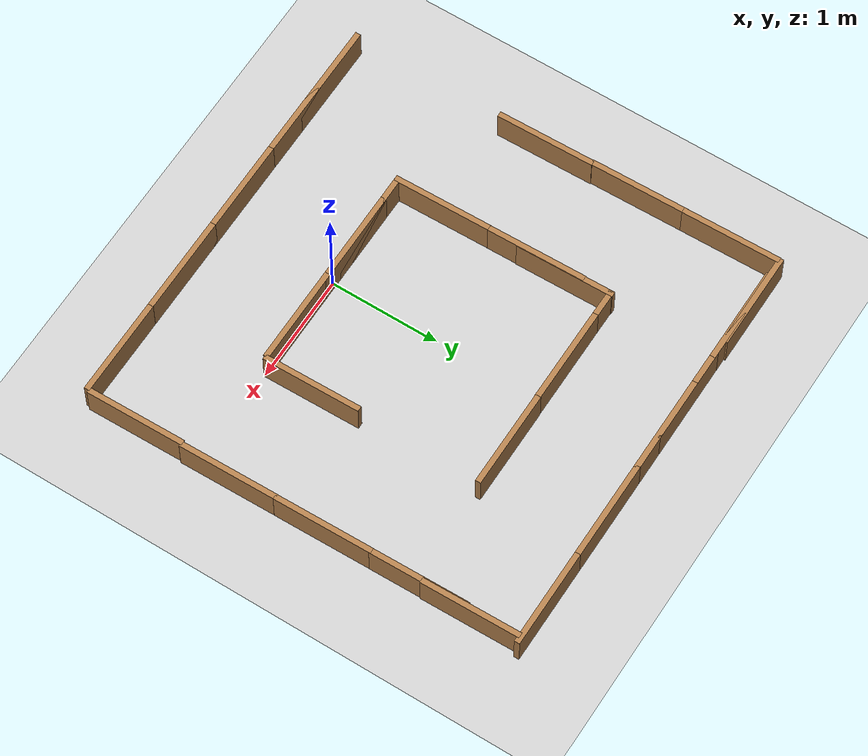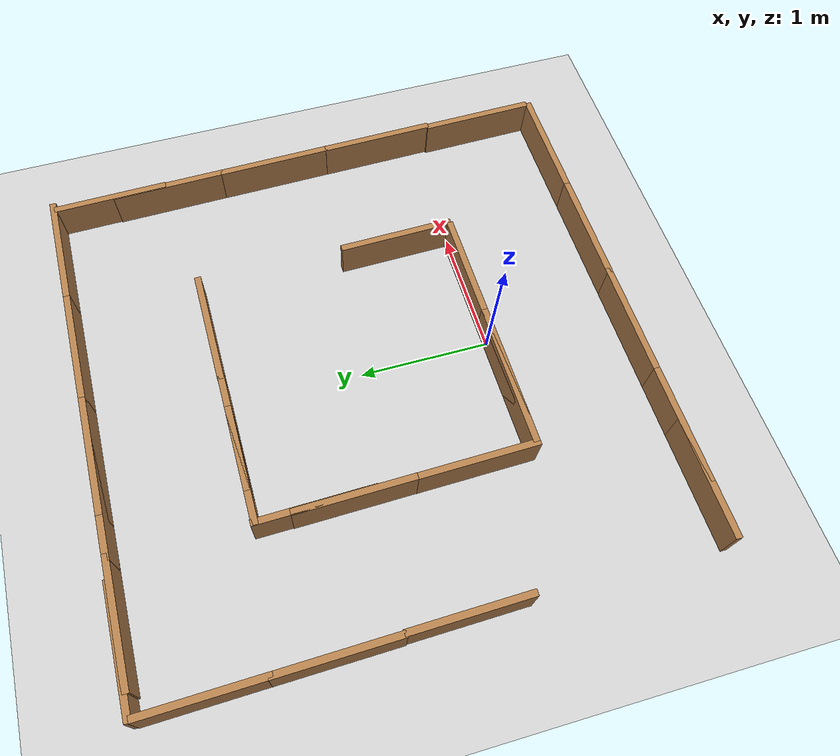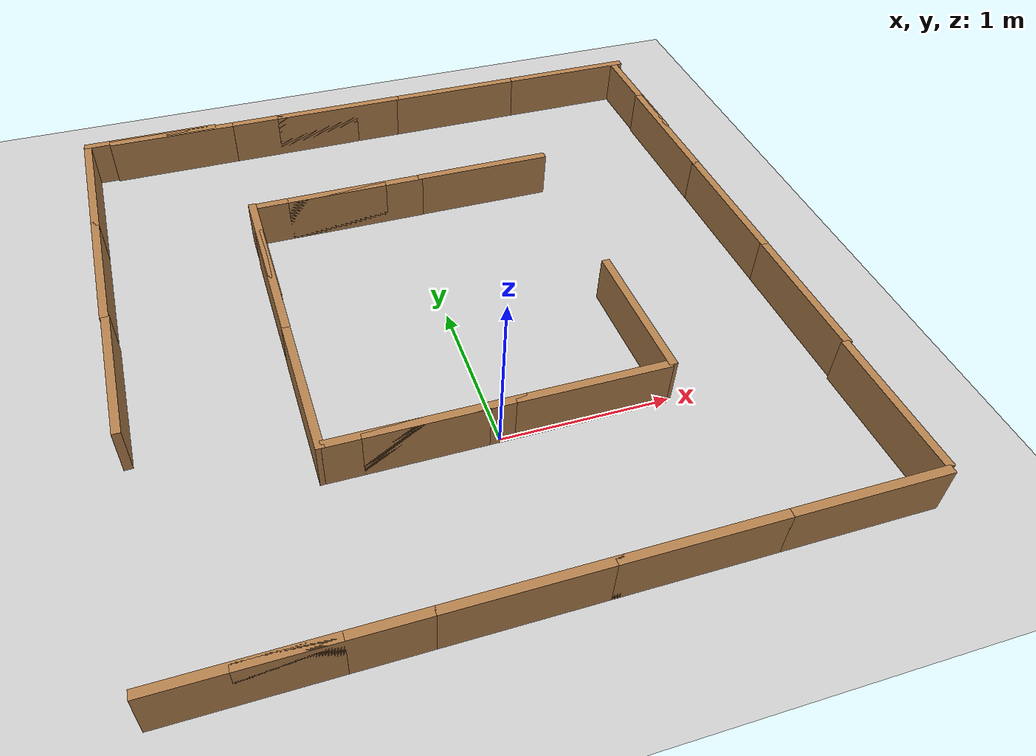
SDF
<sdf version="1.7">
 <world name="default">
  <light name="sun" type="directional">
   <pose>0 0 10 0 -0 0</pose>
   <diffuse>0.8 0.8 0.8 1</diffuse>
   <specular>0.2 0.2 0.2 1</specular>
   <attenuation>
    <range>1000</range>
    <constant>0.9</constant>
    <linear>0.01</linear>
    <quadratic>0.001</quadratic>
   </attenuation>
   <direction>-0.5 0.1 -0.9</direction>
   <spot><inner_angle>0</inner_angle><outer_angle>0</outer_angle><falloff>0</falloff></spot>
  </light>
  <model name="ground_plane">
   <static>1</static>
   <link name="link">
    <collision name="collision">
     <geometry><plane><normal>0 0 1</normal><size>100 100</size></plane></geometry>
     <surface>
      <contact><collide_bitmask>65535</collide_bitmask></contact>
      <friction><ode><mu>100</mu><mu2>50</mu2></ode></friction>
     </surface>
    </collision>
    <visual name="visual">
     <cast_shadows>0</cast_shadows>
     <geometry><plane><normal>0 0 1</normal><size>100 100</size></plane></geometry>
     <material>
      <script><uri>file://media/materials/scripts/gazebo.material</uri><name>Gazebo/Grey</name></script>
     </material>
    </visual>
   </link>
  </model>
  <gravity>0 0 -9.8</gravity>
  <magnetic_field>6e-06 2.3e-05 -4.2e-05</magnetic_field>
  <atmosphere type="adiabatic"/>
  <physics type="ode">
   <max_step_size>0.001</max_step_size>
   <real_time_factor>1</real_time_factor>
   <real_time_update_rate>1000</real_time_update_rate>
  </physics>
  <scene><ambient>0.4 0.4 0.4 1</ambient><background>0.7 0.7 0.7 1</background><shadows>1</shadows></scene>
  <audio><device>default</device></audio>
  <spherical_coordinates>
   <surface_model>EARTH_WGS84</surface_model>
   <latitude_deg>0</latitude_deg>
   <longitude_deg>0</longitude_deg>
   <elevation>0</elevation>
   <heading_deg>0</heading_deg>
  </spherical_coordinates>
  <model name="wall90cm">
   <pose>1.55943 3.01425 0 0 -0 0</pose>
   <link name="Wall_6">
    <collision name="Wall_6_Collision">
     <geometry><box><size>0.9 0.05 0.3</size></box></geometry>
     <pose>0 0 0.15 0 -0 0</pose>
    </collision>
    <visual name="Wall_6_Visual">
     <pose>0 0 0.15 0 -0 0</pose>
     <geometry><box><size>0.9 0.05 0.3</size></box></geometry>
     <material>
      <script><uri>file://media/materials/scripts/gazebo.material</uri><name>Gazebo/Wood</name></script>
      <ambient>1 1 1 1</ambient>
     </material>
     <meta><layer>0</layer></meta>
    </visual>
   </link>
   <static>1</static>
  </model>
  <model name="wall90cm_clone">
   <pose>0.66366 3.01425 0 0 -0 0</pose>
   <link name="Wall_6">
    <collision name="Wall_6_Collision">
     <geometry><box><size>0.9 0.05 0.3</size></box></geometry>
     <pose>0 0 0.15 0 -0 0</pose>
    </collision>
    <visual name="Wall_6_Visual">
     <pose>0 0 0.15 0 -0 0</pose>
     <geometry><box><size>0.9 0.05 0.3</size></box></geometry>
     <material>
      <script><uri>file://media/materials/scripts/gazebo.material</uri><name>Gazebo/Wood</name></script>
      <ambient>1 1 1 1</ambient>
     </material>
     <meta><layer>0</layer></meta>
    </visual>
   </link>
   <static>1</static>
  </model>
  <model name="wall90cm_clone_0">
   <pose>-0.219039 3.01425 0 0 -0 0</pose>
   <link name="Wall_6">
    <collision name="Wall_6_Collision">
     <geometry><box><size>0.9 0.05 0.3</size></box></geometry>
     <pose>0 0 0.15 0 -0 0</pose>
    </collision>
    <visual name="Wall_6_Visual">
     <pose>0 0 0.15 0 -0 0</pose>
     <geometry><box><size>0.9 0.05 0.3</size></box></geometry>
     <material>
      <script><uri>file://media/materials/scripts/gazebo.material</uri><name>Gazebo/Wood</name></script>
      <ambient>1 1 1 1</ambient>
     </material>
     <meta><layer>0</layer></meta>
    </visual>
   </link>
   <static>1</static>
  </model>
  <model name="wall90cm_clone_1">
   <pose>-0.539426 3.01425 0 0 -0 0</pose>
   <link name="Wall_6">
    <collision name="Wall_6_Collision">
     <geometry><box><size>0.9 0.05 0.3</size></box></geometry>
     <pose>0 0 0.15 0 -0 0</pose>
    </collision>
    <visual name="Wall_6_Visual">
     <pose>0 0 0.15 0 -0 0</pose>
     <geometry><box><size>0.9 0.05 0.3</size></box></geometry>
     <material>
      <script><uri>file://media/materials/scripts/gazebo.material</uri><name>Gazebo/Wood</name></script>
      <ambient>1 1 1 1</ambient>
     </material>
     <meta><layer>0</layer></meta>
    </visual>
   </link>
   <static>1</static>
  </model>
  <model name="wall90cm_clone_2">
   <pose>-1.38943 3.01425 0 0 -0 0</pose>
   <link name="Wall_6">
    <collision name="Wall_6_Collision">
     <geometry><box><size>0.9 0.05 0.3</size></box></geometry>
     <pose>0 0 0.15 0 -0 0</pose>
    </collision>
    <visual name="Wall_6_Visual">
     <pose>0 0 0.15 0 -0 0</pose>
     <geometry><box><size>0.9 0.05 0.3</size></box></geometry>
     <material>
      <script><uri>file://media/materials/scripts/gazebo.material</uri><name>Gazebo/Wood</name></script>
      <ambient>1 1 1 1</ambient>
     </material>
     <meta><layer>0</layer></meta>
    </visual>
   </link>
   <static>1</static>
  </model>
  <model name="wall90cm_clone_3">
   <pose>-1.55943 3.02733 0 0 -0 0</pose>
   <link name="Wall_6">
    <collision name="Wall_6_Collision">
     <geometry><box><size>0.9 0.05 0.3</size></box></geometry>
     <pose>0 0 0.15 0 -0 0</pose>
    </collision>
    <visual name="Wall_6_Visual">
     <pose>0 0 0.15 0 -0 0</pose>
     <geometry><box><size>0.9 0.05 0.3</size></box></geometry>
     <material>
      <script><uri>file://media/materials/scripts/gazebo.material</uri><name>Gazebo/Wood</name></script>
      <ambient>1 1 1 1</ambient>
     </material>
     <meta><layer>0</layer></meta>
    </visual>
   </link>
   <static>1</static>
  </model>
  <model name="wall90cm_clone_4">
   <pose>1.5381 -1.03249 0 0 -0 0</pose>
   <link name="Wall_6">
    <collision name="Wall_6_Collision">
     <geometry><box><size>0.9 0.05 0.3</size></box></geometry>
     <pose>0 0 0.15 0 -0 0</pose>
    </collision>
    <visual name="Wall_6_Visual">
     <pose>0 0 0.15 0 -0 0</pose>
     <geometry><box><size>0.9 0.05 0.3</size></box></geometry>
     <material>
      <script><uri>file://media/materials/scripts/gazebo.material</uri><name>Gazebo/Wood</name></script>
      <ambient>1 1 1 1</ambient>
     </material>
     <meta><layer>0</layer></meta>
    </visual>
   </link>
   <static>1</static>
  </model>
  <model name="wall90cm_clone_5">
   <pose>0.642323 -1.03249 0 0 -0 0</pose>
   <link name="Wall_6">
    <collision name="Wall_6_Collision">
     <geometry><box><size>0.9 0.05 0.3</size></box></geometry>
     <pose>0 0 0.15 0 -0 0</pose>
    </collision>
    <visual name="Wall_6_Visual">
     <pose>0 0 0.15 0 -0 0</pose>
     <geometry><box><size>0.9 0.05 0.3</size></box></geometry>
     <material>
      <script><uri>file://media/materials/scripts/gazebo.material</uri><name>Gazebo/Wood</name></script>
      <ambient>1 1 1 1</ambient>
     </material>
     <meta><layer>0</layer></meta>
    </visual>
   </link>
   <static>1</static>
  </model>
  <model name="wall90cm_clone_6">
   <pose>-0.214221 -1.03249 0 0 -0 0</pose>
   <link name="Wall_6">
    <collision name="Wall_6_Collision">
     <geometry><box><size>0.9 0.05 0.3</size></box></geometry>
     <pose>0 0 0.15 0 -0 0</pose>
    </collision>
    <visual name="Wall_6_Visual">
     <pose>0 0 0.15 0 -0 0</pose>
     <geometry><box><size>0.9 0.05 0.3</size></box></geometry>
     <material>
      <script><uri>file://media/materials/scripts/gazebo.material</uri><name>Gazebo/Wood</name></script>
      <ambient>1 1 1 1</ambient>
     </material>
     <meta><layer>0</layer></meta>
    </visual>
   </link>
   <static>1</static>
  </model>
  <model name="wall90cm_clone_7">
   <pose>-1.11 -1.03249 0 0 -0 0</pose>
   <link name="Wall_6">
    <collision name="Wall_6_Collision">
     <geometry><box><size>0.9 0.05 0.3</size></box></geometry>
     <pose>0 0 0.15 0 -0 0</pose>
    </collision>
    <visual name="Wall_6_Visual">
     <pose>0 0 0.15 0 -0 0</pose>
     <geometry><box><size>0.9 0.05 0.3</size></box></geometry>
     <material>
      <script><uri>file://media/materials/scripts/gazebo.material</uri><name>Gazebo/Wood</name></script>
      <ambient>1 1 1 1</ambient>
     </material>
     <meta><layer>0</layer></meta>
    </visual>
   </link>
   <static>1</static>
  </model>
  <model name="wall90cm_clone_8">
   <pose>-1.52192 -1.03249 0 0 -0 0</pose>
   <link name="Wall_6">
    <collision name="Wall_6_Collision">
     <geometry><box><size>0.9 0.05 0.3</size></box></geometry>
     <pose>0 0 0.15 0 -0 0</pose>
    </collision>
    <visual name="Wall_6_Visual">
     <pose>0 0 0.15 0 -0 0</pose>
     <geometry><box><size>0.9 0.05 0.3</size></box></geometry>
     <material>
      <script><uri>file://media/materials/scripts/gazebo.material</uri><name>Gazebo/Wood</name></script>
      <ambient>1 1 1 1</ambient>
     </material>
     <meta><layer>0</layer></meta>
    </visual>
   </link>
   <static>1</static>
  </model>
  <model name="wall90cm_clone_9">
   <pose>0.557324 2.0277 0 0 -0 0</pose>
   <link name="Wall_6">
    <collision name="Wall_6_Collision">
     <geometry><box><size>0.9 0.05 0.3</size></box></geometry>
     <pose>0 0 0.15 0 -0 0</pose>
    </collision>
    <visual name="Wall_6_Visual">
     <pose>0 0 0.15 0 -0 0</pose>
     <geometry><box><size>0.9 0.05 0.3</size></box></geometry>
     <material>
      <script><uri>file://media/materials/scripts/gazebo.material</uri><name>Gazebo/Wood</name></script>
      <ambient>1 1 1 1</ambient>
     </material>
     <meta><layer>0</layer></meta>
    </visual>
   </link>
   <static>1</static>
  </model>
  <model name="wall90cm_clone_9_clone">
   <pose>-0.317894 2.02535 0 0 -0 0</pose>
   <link name="Wall_6">
    <collision name="Wall_6_Collision">
     <geometry><box><size>0.9 0.05 0.3</size></box></geometry>
     <pose>0 0 0.15 0 -0 0</pose>
    </collision>
    <visual name="Wall_6_Visual">
     <pose>0 0 0.15 0 -0 0</pose>
     <geometry><box><size>0.9 0.05 0.3</size></box></geometry>
     <material>
      <script><uri>file://media/materials/scripts/gazebo.material</uri><name>Gazebo/Wood</name></script>
      <ambient>1 1 1 1</ambient>
     </material>
     <meta><layer>0</layer></meta>
    </visual>
   </link>
   <static>1</static>
  </model>
  <model name="wall90cm_clone_9_clone_0">
   <pose>-0.566965 2.02535 0 0 -0 0</pose>
   <link name="Wall_6">
    <collision name="Wall_6_Collision">
     <geometry><box><size>0.9 0.05 0.3</size></box></geometry>
     <pose>0 0 0.15 0 -0 0</pose>
    </collision>
    <visual name="Wall_6_Visual">
     <pose>0 0 0.15 0 -0 0</pose>
     <geometry><box><size>0.9 0.05 0.3</size></box></geometry>
     <material>
      <script><uri>file://media/materials/scripts/gazebo.material</uri><name>Gazebo/Wood</name></script>
      <ambient>1 1 1 1</ambient>
     </material>
     <meta><layer>0</layer></meta>
    </visual>
   </link>
   <static>1</static>
  </model>
  <model name="wall90cm_clone_9_clone_1">
   <pose>0.527639 0.006554 0 0 -0 0</pose>
   <link name="Wall_6">
    <collision name="Wall_6_Collision">
     <geometry><box><size>0.9 0.05 0.3</size></box></geometry>
     <pose>0 0 0.15 0 -0 0</pose>
    </collision>
    <visual name="Wall_6_Visual">
     <pose>0 0 0.15 0 -0 0</pose>
     <geometry><box><size>0.9 0.05 0.3</size></box></geometry>
     <material>
      <script><uri>file://media/materials/scripts/gazebo.material</uri><name>Gazebo/Wood</name></script>
      <ambient>1 1 1 1</ambient>
     </material>
     <meta><layer>0</layer></meta>
    </visual>
   </link>
   <static>1</static>
  </model>
  <model name="wall90cm_clone_9_clone_2">
   <pose>-0.304785 0.006555 0 0 -0 0</pose>
   <link name="Wall_6">
    <collision name="Wall_6_Collision">
     <geometry><box><size>0.9 0.05 0.3</size></box></geometry>
     <pose>0 0 0.15 0 -0 0</pose>
    </collision>
    <visual name="Wall_6_Visual">
     <pose>0 0 0.15 0 -0 0</pose>
     <geometry><box><size>0.9 0.05 0.3</size></box></geometry>
     <material>
      <script><uri>file://media/materials/scripts/gazebo.material</uri><name>Gazebo/Wood</name></script>
      <ambient>1 1 1 1</ambient>
     </material>
     <meta><layer>0</layer></meta>
    </visual>
   </link>
   <static>1</static>
  </model>
  <model name="wall90cm_clone_9_clone_3">
   <pose>-0.51453 0.006555 0 0 -0 0</pose>
   <link name="Wall_6">
    <collision name="Wall_6_Collision">
     <geometry><box><size>0.9 0.05 0.3</size></box></geometry>
     <pose>0 0 0.15 0 -0 0</pose>
    </collision>
    <visual name="Wall_6_Visual">
     <pose>0 0 0.15 0 -0 0</pose>
     <geometry><box><size>0.9 0.05 0.3</size></box></geometry>
     <material>
      <script><uri>file://media/materials/scripts/gazebo.material</uri><name>Gazebo/Wood</name></script>
      <ambient>1 1 1 1</ambient>
     </material>
     <meta><layer>0</layer></meta>
    </visual>
   </link>
   <static>1</static>
  </model>
  <model name="wall90cm_clone_9_clone_4_clone">
   <pose>-0.976207 0.432089 0 0 -0 1.5866</pose>
   <link name="Wall_6">
    <collision name="Wall_6_Collision">
     <geometry><box><size>0.9 0.05 0.3</size></box></geometry>
     <pose>0 0 0.15 0 -0 0</pose>
    </collision>
    <visual name="Wall_6_Visual">
     <pose>0 0 0.15 0 -0 0</pose>
     <geometry><box><size>0.9 0.05 0.3</size></box></geometry>
     <material>
      <script><uri>file://media/materials/scripts/gazebo.material</uri><name>Gazebo/Wood</name></script>
      <ambient>1 1 1 1</ambient>
     </material>
     <meta><layer>0</layer></meta>
    </visual>
   </link>
   <static>1</static>
  </model>
  <model name="wall90cm_clone_9_clone_4_clone_0">
   <pose>-0.989316 1.33006 0 0 -0 1.5866</pose>
   <link name="Wall_6">
    <collision name="Wall_6_Collision">
     <geometry><box><size>0.9 0.05 0.3</size></box></geometry>
     <pose>0 0 0.15 0 -0 0</pose>
    </collision>
    <visual name="Wall_6_Visual">
     <pose>0 0 0.15 0 -0 0</pose>
     <geometry><box><size>0.9 0.05 0.3</size></box></geometry>
     <material>
      <script><uri>file://media/materials/scripts/gazebo.material</uri><name>Gazebo/Wood</name></script>
      <ambient>1 1 1 1</ambient>
     </material>
     <meta><layer>0</layer></meta>
    </visual>
   </link>
   <static>1</static>
  </model>
  <model name="wall90cm_clone_9_clone_4_clone_1">
   <pose>-0.989316 1.60535 0 0 -0 1.5866</pose>
   <link name="Wall_6">
    <collision name="Wall_6_Collision">
     <geometry><box><size>0.9 0.05 0.3</size></box></geometry>
     <pose>0 0 0.15 0 -0 0</pose>
    </collision>
    <visual name="Wall_6_Visual">
     <pose>0 0 0.15 0 -0 0</pose>
     <geometry><box><size>0.9 0.05 0.3</size></box></geometry>
     <material>
      <script><uri>file://media/materials/scripts/gazebo.material</uri><name>Gazebo/Wood</name></script>
      <ambient>1 1 1 1</ambient>
     </material>
     <meta><layer>0</layer></meta>
    </visual>
   </link>
   <static>1</static>
  </model>
  <model name="wall90cm_clone_9_clone_4_clone_clone">
   <pose>0.977042 0.445198 0 0 -0 1.5866</pose>
   <link name="Wall_6">
    <collision name="Wall_6_Collision">
     <geometry><box><size>0.9 0.05 0.3</size></box></geometry>
     <pose>0 0 0.15 0 -0 0</pose>
    </collision>
    <visual name="Wall_6_Visual">
     <pose>0 0 0.15 0 -0 0</pose>
     <geometry><box><size>0.9 0.05 0.3</size></box></geometry>
     <material>
      <script><uri>file://media/materials/scripts/gazebo.material</uri><name>Gazebo/Wood</name></script>
      <ambient>1 1 1 1</ambient>
     </material>
     <meta><layer>0</layer></meta>
    </visual>
   </link>
   <static>1</static>
  </model>
  <model name="wall90cm_clone_9_clone_4_clone_clone_0">
   <pose>1.97797 -0.568196 0 0 -0 1.5866</pose>
   <link name="Wall_6">
    <collision name="Wall_6_Collision">
     <geometry><box><size>0.9 0.05 0.3</size></box></geometry>
     <pose>0 0 0.15 0 -0 0</pose>
    </collision>
    <visual name="Wall_6_Visual">
     <pose>0 0 0.15 0 -0 0</pose>
     <geometry><box><size>0.9 0.05 0.3</size></box></geometry>
     <material>
      <script><uri>file://media/materials/scripts/gazebo.material</uri><name>Gazebo/Wood</name></script>
      <ambient>1 1 1 1</ambient>
     </material>
     <meta><layer>0</layer></meta>
    </visual>
   </link>
   <static>1</static>
  </model>
  <model name="wall90cm_clone_9_clone_4_clone_clone_1">
   <pose>1.97797 0.316667 0 0 -0 1.5866</pose>
   <link name="Wall_6">
    <collision name="Wall_6_Collision">
     <geometry><box><size>0.9 0.05 0.3</size></box></geometry>
     <pose>0 0 0.15 0 -0 0</pose>
    </collision>
    <visual name="Wall_6_Visual">
     <pose>0 0 0.15 0 -0 0</pose>
     <geometry><box><size>0.9 0.05 0.3</size></box></geometry>
     <material>
      <script><uri>file://media/materials/scripts/gazebo.material</uri><name>Gazebo/Wood</name></script>
      <ambient>1 1 1 1</ambient>
     </material>
     <meta><layer>0</layer></meta>
    </visual>
   </link>
   <static>1</static>
  </model>
  <model name="wall90cm_clone_9_clone_4_clone_clone_2">
   <pose>1.96486 1.20153 0 0 -0 1.5866</pose>
   <link name="Wall_6">
    <collision name="Wall_6_Collision">
     <geometry><box><size>0.9 0.05 0.3</size></box></geometry>
     <pose>0 0 0.15 0 -0 0</pose>
    </collision>
    <visual name="Wall_6_Visual">
     <pose>0 0 0.15 0 -0 0</pose>
     <geometry><box><size>0.9 0.05 0.3</size></box></geometry>
     <material>
      <script><uri>file://media/materials/scripts/gazebo.material</uri><name>Gazebo/Wood</name></script>
      <ambient>1 1 1 1</ambient>
     </material>
     <meta><layer>0</layer></meta>
    </visual>
   </link>
   <static>1</static>
  </model>
  <model name="wall90cm_clone_9_clone_4_clone_clone_3">
   <pose>1.95175 2.08639 0 0 -0 1.5866</pose>
   <link name="Wall_6">
    <collision name="Wall_6_Collision">
     <geometry><box><size>0.9 0.05 0.3</size></box></geometry>
     <pose>0 0 0.15 0 -0 0</pose>
    </collision>
    <visual name="Wall_6_Visual">
     <pose>0 0 0.15 0 -0 0</pose>
     <geometry><box><size>0.9 0.05 0.3</size></box></geometry>
     <material>
      <script><uri>file://media/materials/scripts/gazebo.material</uri><name>Gazebo/Wood</name></script>
      <ambient>1 1 1 1</ambient>
     </material>
     <meta><layer>0</layer></meta>
    </visual>
   </link>
   <static>1</static>
  </model>
  <model name="wall90cm_clone_9_clone_4_clone_clone_4">
   <pose>1.95175 2.55832 0 0 -0 1.5866</pose>
   <link name="Wall_6">
    <collision name="Wall_6_Collision">
     <geometry><box><size>0.9 0.05 0.3</size></box></geometry>
     <pose>0 0 0.15 0 -0 0</pose>
    </collision>
    <visual name="Wall_6_Visual">
     <pose>0 0 0.15 0 -0 0</pose>
     <geometry><box><size>0.9 0.05 0.3</size></box></geometry>
     <material>
      <script><uri>file://media/materials/scripts/gazebo.material</uri><name>Gazebo/Wood</name></script>
      <ambient>1 1 1 1</ambient>
     </material>
     <meta><layer>0</layer></meta>
    </visual>
   </link>
   <static>1</static>
  </model>
  <model name="wall90cm_clone_9_clone_4_clone_clone_5">
   <pose>-1.98127 2.57382 0 0 -0 1.5866</pose>
   <link name="Wall_6">
    <collision name="Wall_6_Collision">
     <geometry><box><size>0.9 0.05 0.3</size></box></geometry>
     <pose>0 0 0.15 0 -0 0</pose>
    </collision>
    <visual name="Wall_6_Visual">
     <pose>0 0 0.15 0 -0 0</pose>
     <geometry><box><size>0.9 0.05 0.3</size></box></geometry>
     <material>
      <script><uri>file://media/materials/scripts/gazebo.material</uri><name>Gazebo/Wood</name></script>
      <ambient>1 1 1 1</ambient>
     </material>
     <meta><layer>0</layer></meta>
    </visual>
   </link>
   <static>1</static>
  </model>
  <model name="wall90cm_clone_9_clone_4_clone_clone_6">
   <pose>-1.96816 1.70863 0 0 -0 1.5866</pose>
   <link name="Wall_6">
    <collision name="Wall_6_Collision">
     <geometry><box><size>0.9 0.05 0.3</size></box></geometry>
     <pose>0 0 0.15 0 -0 0</pose>
    </collision>
    <visual name="Wall_6_Visual">
     <pose>0 0 0.15 0 -0 0</pose>
     <geometry><box><size>0.9 0.05 0.3</size></box></geometry>
     <material>
      <script><uri>file://media/materials/scripts/gazebo.material</uri><name>Gazebo/Wood</name></script>
      <ambient>1 1 1 1</ambient>
     </material>
     <meta><layer>0</layer></meta>
    </visual>
   </link>
   <static>1</static>
  </model>
  <model name="wall90cm_clone_9_clone_4_clone_clone_7">
   <pose>-1.94851 0.823764 0 0 -0 1.5866</pose>
   <link name="Wall_6">
    <collision name="Wall_6_Collision">
     <geometry><box><size>0.9 0.05 0.3</size></box></geometry>
     <pose>0 0 0.15 0 -0 0</pose>
    </collision>
    <visual name="Wall_6_Visual">
     <pose>0 0 0.15 0 -0 0</pose>
     <geometry><box><size>0.9 0.05 0.3</size></box></geometry>
     <material>
      <script><uri>file://media/materials/scripts/gazebo.material</uri><name>Gazebo/Wood</name></script>
      <ambient>1 1 1 1</ambient>
     </material>
     <meta><layer>0</layer></meta>
    </visual>
   </link>
   <static>1</static>
  </model>
 </world>
</sdf>
